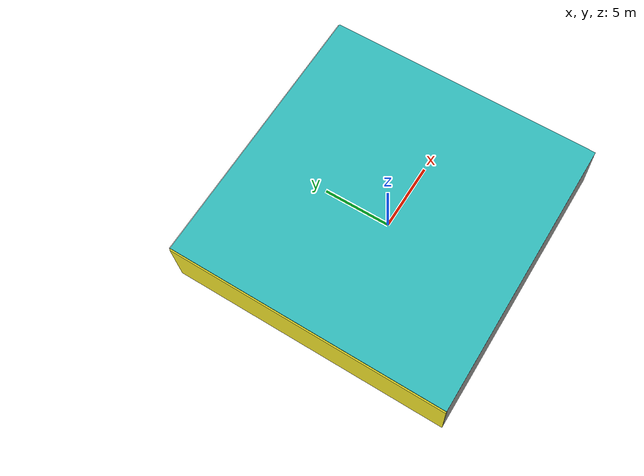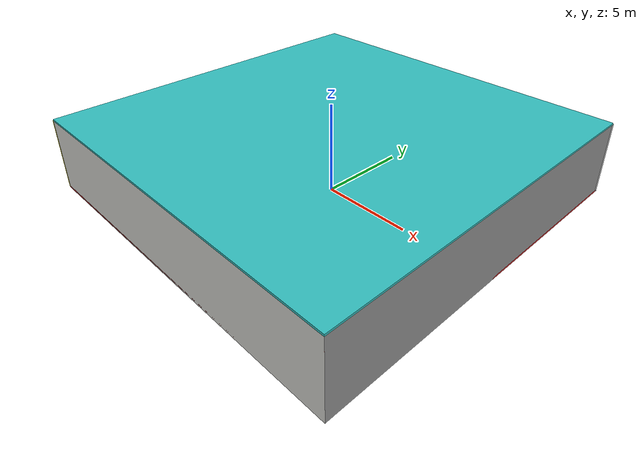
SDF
<sdf version="1.4">
 <world name="default">
  <physics type="ode">
   <max_step_size>0.001</max_step_size>
   <real_time_factor>1</real_time_factor>
   <real_time_update_rate>1000</real_time_update_rate>
   <gravity>0 0 -9.8</gravity>
  </physics>
  <scene><ambient>0.4 0.4 0.4 1</ambient><background>0.7 0.7 0.7 1</background><shadows>1</shadows></scene>
  <model name="Surrounding">
   <static>1</static>
   <link name="Ceiling">
    <collision name="Ceiling_Collision"><geometry><box><size>20 20 0.1</size></box></geometry></collision>
    <visual name="Ceiling_Visual">
     <geometry><box><size>20 20 0.1</size></box></geometry>
     <material>
      <script>
       <uri>file://media/materials/scripts/gazebo.material</uri>
       <name>Gazebo/TurquoiseGlowOutline</name>
      </script>
     </material>
    </visual>
    <pose>0 0 4.05 0 0 0</pose>
   </link>
   <link name="Wall_South">
    <collision name="Wall_South_Collision">
     <geometry><box><size>20 0 4</size></box></geometry>
     <pose>0 0 2 0 -0 0</pose>
    </collision>
    <visual name="Wall_South_Visual">
     <pose>0 0 2 0 -0 0</pose>
     <geometry><box><size>20 0 4</size></box></geometry>
     <material>
      <script><uri>file://media/materials/scripts/gazebo.material</uri><name>Gazebo/CeilingTiled</name></script>
     </material>
    </visual>
    <velocity_decay><linear>0</linear><angular>0</angular></velocity_decay>
    <pose>0 -10 0 0 -0 0</pose>
   </link>
   <link name="Wall_East">
    <collision name="Wall_21_Collision">
     <geometry><box><size>20 0 4</size></box></geometry>
     <pose>0 0 2 0 -0 0</pose>
    </collision>
    <visual name="Wall_21_Visual">
     <pose>0 0 2 0 -0 0</pose>
     <geometry><box><size>20 0 4</size></box></geometry>
     <material>
      <script><uri>file://media/materials/scripts/gazebo.material</uri><name>Gazebo/GreyGradientSky</name></script>
     </material>
    </visual>
    <velocity_decay><linear>0</linear><angular>0</angular></velocity_decay>
    <pose>10 0 0 0 -0 1.5708</pose>
   </link>
   <link name="Wall_North">
    <collision name="Wall_22_Collision">
     <geometry><box><size>20 0.2 4</size></box></geometry>
     <pose>0 0 2 0 -0 0</pose>
    </collision>
    <visual name="Wall_22_Visual">
     <pose>0 0 2 0 -0 0</pose>
     <geometry><box><size>20 0.2 4</size></box></geometry>
     <material>
      <script><uri>file://media/materials/scripts/gazebo.material</uri><name>Gazebo/CloudySky</name></script>
     </material>
    </visual>
    <velocity_decay><linear>0</linear><angular>0</angular></velocity_decay>
    <pose>0 10 0 0 -0 0</pose>
   </link>
   <link name="Wall_West">
    <collision name="Wall_23_Collision">
     <geometry><box><size>20 0.2 4</size></box></geometry>
     <pose>0 0 2 0 -0 0</pose>
    </collision>
    <visual name="Wall_23_Visual">
     <pose>0 0 2 0 -0 0</pose>
     <geometry><box><size>20 0.2 4</size></box></geometry>
     <material>
      <script><uri>file://media/materials/scripts/gazebo.material</uri><name>Gazebo/YellowGlow</name></script>
     </material>
    </visual>
    <velocity_decay><linear>0</linear><angular>0</angular></velocity_decay>
    <pose>-10 0 0 0 0 -1.5708</pose>
   </link>
   <link name="Ground_link">
    <collision name="collision">
     <pose>0 0 .05 0 -0 0</pose>
     <geometry><box><size>20 20 0.1</size></box></geometry>
    </collision>
    <visual name="visual">
     <pose>0 0 .05 0 -0 0</pose>
     <geometry><box><size>20 20 0.1</size></box></geometry>
     <material>
      <script><uri>file://media/materials/scripts/gazebo.material</uri><name>Gazebo/Red</name></script>
     </material>
    </visual>
   </link>
   <static>1</static>
  </model>
  <spherical_coordinates>
   <surface_model>EARTH_WGS84</surface_model>
   <latitude_deg>0</latitude_deg>
   <longitude_deg>0</longitude_deg>
   <elevation>0</elevation>
   <heading_deg>0</heading_deg>
  </spherical_coordinates>
  <light name="lightball_0" type="diffuse">
   <diffuse>0.8 0.8 0.8 1</diffuse>
   <specular>0.2 0.2 0.2 1</specular>
   <attenuation>
    <range>100</range>
    <constant>0.7</constant>
    <linear>0.01</linear>
    <quadratic>0.001</quadratic>
   </attenuation>
   <direction>-0.5 0.1 -0.9</direction>
   <pose>-8.64611543696 -8.73956174908 2.75457656576 0 0 0</pose>
  </light>
  <light name="lightball_1" type="diffuse">
   <diffuse>0.8 0.8 0.8 1</diffuse>
   <specular>0.2 0.2 0.2 1</specular>
   <attenuation>
    <range>100</range>
    <constant>0.7</constant>
    <linear>0.01</linear>
    <quadratic>0.001</quadratic>
   </attenuation>
   <direction>-0.5 0.1 -0.9</direction>
   <pose>0.163122084183 9.42205937564 0.626744980682 0 0 0</pose>
  </light>
  <light name="lightball_2" type="diffuse">
   <diffuse>0.8 0.8 0.8 1</diffuse>
   <specular>0.2 0.2 0.2 1</specular>
   <attenuation>
    <range>100</range>
    <constant>0.7</constant>
    <linear>0.01</linear>
    <quadratic>0.001</quadratic>
   </attenuation>
   <direction>-0.5 0.1 -0.9</direction>
   <pose>-7.83486513195 -8.19547764946 1.9552879613 0 0 0</pose>
  </light>
  <include><uri>model://cabinet</uri><pose>-8.08103692932 -8.11383248055 0 0 0 0.914490619662</pose></include>
  <include><uri>model://cabinet</uri><pose>-4.55288219548 1.34856566459 0 0 0 1.51289177336</pose></include>
  <include><uri>model://cabinet</uri><pose>-2.52271643709 0.730288610034 0 0 0 1.34525985324</pose></include>
  <include><uri>model://cabinet</uri><pose>8.10373205138 0.491579061271 0 0 0 2.01026920093</pose></include>
 </world>
</sdf>

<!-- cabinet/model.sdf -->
<sdf version="1.5">
  <model name="cabinet">
    <static>true</static>
    <link name="cabinet_bottom_plate">
      <inertial>
        <pose>0 0 -1 0 0 0</pose>
        <inertia>
          <ixx>2.050000</ixx>
          <ixy>0</ixy>
          <ixz>0</ixz>
          <iyy>2.050000</iyy>
          <iyz>0</iyz>
          <izz>2.050000</izz>
        </inertia>
        <mass>25.000000</mass>
      </inertial>
      <collision name="cabinet_bottom_plate_geom">
        <pose>0 0 0.010000 0 0 0</pose>
        <geometry>
          <box>
            <size>0.450000 0.450000 0.020000</size>
          </box>
        </geometry>
      </collision>
      <visual name="cabinet_bottom_plate_geom_visual">
        <pose>0 0 0.010000 0 0 0</pose>
        <geometry>
          <box>
            <size>0.450000 0.450000 0.020000</size>
          </box>
        </geometry>
        <material>
          <script>
            <uri>model://media/materials/scripts/gazebo.material</uri>
            <name>Gazebo/Wood</name>
          </script>
        </material>
      </visual>
      <collision name="cabinet_bottom_plate_geom_cabinet_back_plate">
        <pose>0.235000 0 0.510000 0 0 0</pose>
        <geometry>
          <box>
            <size>0.020000 0.450000 1.020000</size>
          </box>
        </geometry>
      </collision>
      <visual name="cabinet_bottom_plate_geom_cabinet_back_plate_visual">
        <pose>0.235000 0 0.510000 0 0 0</pose>
        <geometry>
          <box>
            <size>0.020000 0.450000 1.020000</size>
          </box>
        </geometry>
        <material>
          <script>
            <uri>model://media/materials/scripts/gazebo.material</uri>
            <name>Gazebo/Wood</name>
          </script>
        </material>
      </visual>
      <collision name="cabinet_bottom_plate_geom_cabinet_left_plate">
        <pose>0 0.235000 0.510000 0 0 0</pose>
        <geometry>
          <box>
            <size>0.450000 0.020000 1.020000</size>
          </box>
        </geometry>
      </collision>
      <visual name="cabinet_bottom_plate_geom_cabinet_left_plate_visual">
        <pose>0 0.235000 0.510000 0 0 0</pose>
        <geometry>
          <box>
            <size>0.450000 0.020000 1.020000</size>
          </box>
        </geometry>
        <material>
          <script>
            <uri>model://media/materials/scripts/gazebo.material</uri>
            <name>Gazebo/Wood</name>
          </script>
        </material>
      </visual>
      <collision name="cabinet_bottom_plate_geom_cabinet_middle_plate">
        <pose>0 0 0.510000 0 0 0</pose>
        <geometry>
          <box>
            <size>0.450000 0.450000 0.020000</size>
          </box>
        </geometry>
      </collision>
      <visual name="cabinet_bottom_plate_geom_cabinet_middle_plate_visual">
        <pose>0 0 0.510000 0 0 0</pose>
        <geometry>
          <box>
            <size>0.450000 0.450000 0.020000</size>
          </box>
        </geometry>
        <material>
          <script>
            <uri>model://media/materials/scripts/gazebo.material</uri>
            <name>Gazebo/Wood</name>
          </script>
        </material>
      </visual>
      <collision name="cabinet_bottom_plate_geom_cabinet_right_plate">
        <pose>0 -0.235000 0.510000 0 0 0</pose>
        <geometry>
          <box>
            <size>0.450000 0.020000 1.020000</size>
          </box>
        </geometry>
      </collision>
      <visual name="cabinet_bottom_plate_geom_cabinet_right_plate_visual">
        <pose>0 -0.235000 0.510000 0 0 0</pose>
        <geometry>
          <box>
            <size>0.450000 0.020000 1.020000</size>
          </box>
        </geometry>
        <material>
          <script>
            <uri>model://media/materials/scripts/gazebo.material</uri>
            <name>Gazebo/Wood</name>
          </script>
        </material>
      </visual>
      <collision name="cabinet_bottom_plate_geom_cabinet_top_plate">
        <pose>0 0 1.010000 0 0 0</pose>
        <geometry>
          <box>
            <size>0.450000 0.450000 0.020000</size>
          </box>
        </geometry>
      </collision>
      <visual name="cabinet_bottom_plate_geom_cabinet_top_plate_visual">
        <pose>0 0 1.010000 0 0 0</pose>
        <geometry>
          <box>
            <size>0.450000 0.450000 0.020000</size>
          </box>
        </geometry>
        <material>
          <script>
            <uri>model://media/materials/scripts/gazebo.material</uri>
            <name>Gazebo/Wood</name>
          </script>
        </material>
      </visual>
    </link>
  </model>
</sdf>
